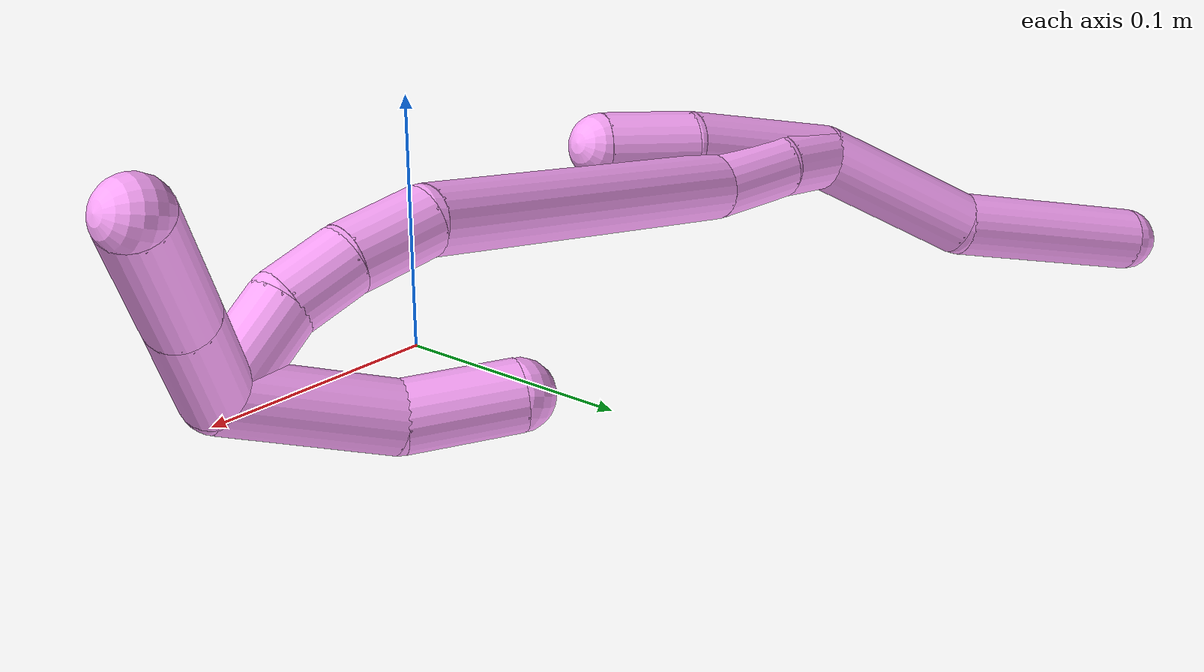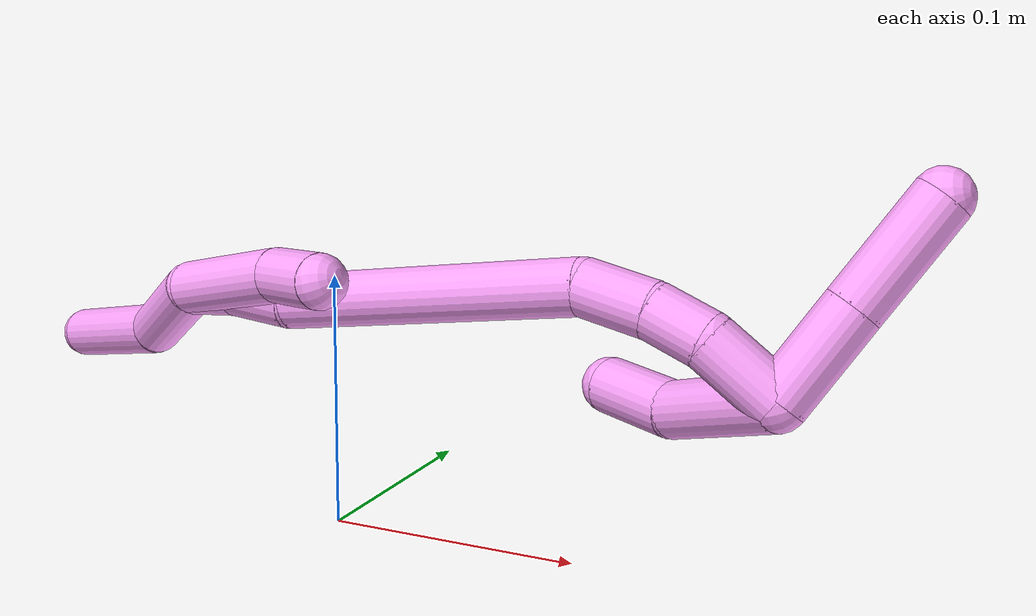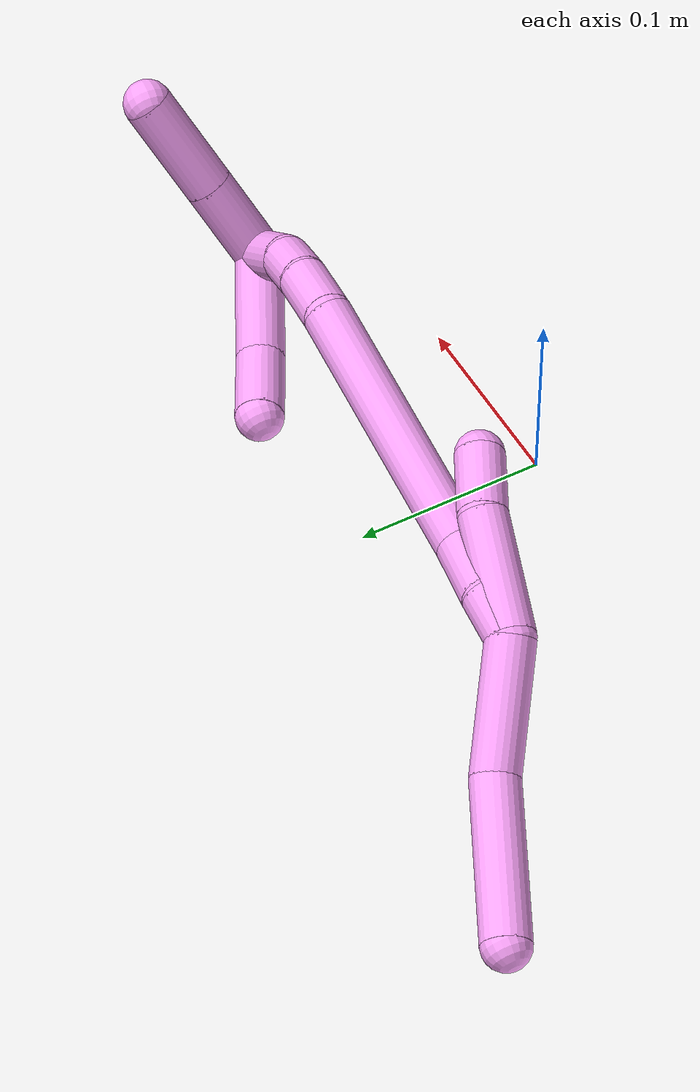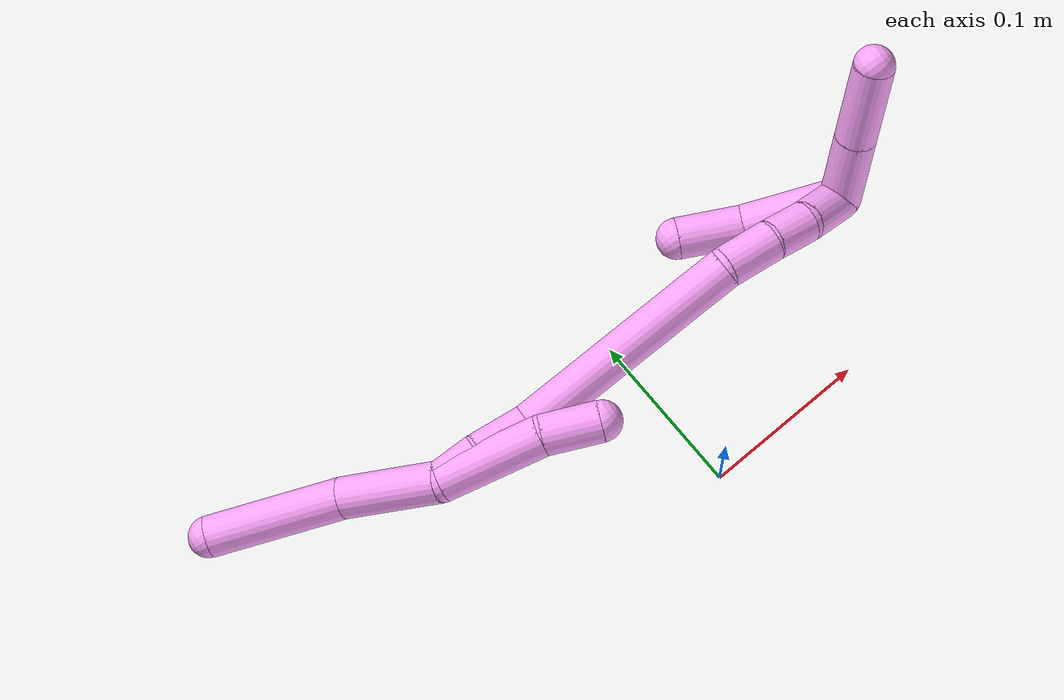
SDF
<sdf version="1.7">
 <world name="default">
  <model name="photoneo_s_sensor">
   <static>1</static>
   <pose>0 0 2 1.57079 1.57079 3.14159</pose>
   <link name="link">
    <inertial><mass>0.1</mass></inertial>
    <sensor name="sensor" type="depth">
     <update_rate>30</update_rate>
     <camera>
      <horizontal_fov>1.22</horizontal_fov>
      <image><width>1920</width><height>1200</height><format>B8G8R8</format></image>
      <clip><near>0.1</near><far>4</far></clip>
      <depth_camera><output>points</output></depth_camera>
     </camera>
     <plugin name="camera_plugin" filename="libgazebo_ros_depth_camera.so">
      <baseline>0.2</baseline>
      <alwaysOn>1</alwaysOn>
      <updateRate>0.0</updateRate>
      <cameraName>camera_ir</cameraName>
      <imageTopicName>/camera/color/image_raw</imageTopicName>
      <cameraInfoTopicName>/camera/color/camera_info</cameraInfoTopicName>
      <depthImageTopicName>/camera/depth/image_raw</depthImageTopicName>
      <depthImageCameraInfoTopicName>/camera/depth/camera_info</depthImageCameraInfoTopicName>
      <pointCloudTopicName>/camera/depth/points</pointCloudTopicName>
      <frameName>fr_optical</frameName>
      <pointCloudCutoff>0.1</pointCloudCutoff>
      <pointCloudCutoffMax>2.0</pointCloudCutoffMax>
      <distortionK1>0</distortionK1>
      <distortionK2>0</distortionK2>
      <distortionK3>0</distortionK3>
      <distortionT1>0</distortionT1>
      <distortionT2>0</distortionT2>
      <CxPrime>0</CxPrime>
      <Cx>0</Cx>
      <Cy>0</Cy>
      <focalLength>0</focalLength>
      <hackBaseline>0</hackBaseline>
     </plugin>
    </sensor>
   </link>
  </model>
  <model name="bin">
   <static>1</static>
   <link name="bottom">
    <collision name="collision-bottom">
     <pose>0 0 -0.01 0 -0 0</pose>
     <geometry><box><size>0.8 0.6 0.02</size></box></geometry>
     <surface>
      <friction><ode><mu>100</mu><mu2>100</mu2></ode></friction>
      <contact><collide_bitmask>65535</collide_bitmask></contact>
     </surface>
    </collision>
   </link>
   <link name="west_wall">
    <collision name="collision-west_wall">
     <pose>-0.41 0 0.1 0 -0 0</pose>
     <geometry><box><size>0.02 0.6 0.2</size></box></geometry>
     <surface>
      <friction><ode><mu>100</mu><mu2>100</mu2></ode></friction>
      <contact><collide_bitmask>65535</collide_bitmask></contact>
     </surface>
    </collision>
   </link>
   <link name="east_wall">
    <collision name="collision-east_wall">
     <pose>0.41 0 0.1 0 -0 0</pose>
     <geometry><box><size>0.02 0.6 0.2</size></box></geometry>
     <surface>
      <friction><ode><mu>100</mu><mu2>100</mu2></ode></friction>
      <contact><collide_bitmask>65535</collide_bitmask></contact>
     </surface>
    </collision>
   </link>
   <link name="south_wall">
    <collision name="collision-south_wall">
     <pose>0 -0.31 0.1 0 -0 0</pose>
     <geometry><box><size>0.8 0.02 0.2</size></box></geometry>
     <surface>
      <friction><ode><mu>100</mu><mu2>100</mu2></ode></friction>
      <contact><collide_bitmask>65535</collide_bitmask></contact>
     </surface>
    </collision>
   </link>
   <link name="north_wall">
    <collision name="collision-north_wall">
     <pose>0 0.31 0.1 0 -0 0</pose>
     <geometry><box><size>0.8 0.02 0.2</size></box></geometry>
     <surface>
      <friction><ode><mu>100</mu><mu2>100</mu2></ode></friction>
      <contact><collide_bitmask>65535</collide_bitmask></contact>
     </surface>
    </collision>
   </link>
  </model>
  <model name="4">
   <static>0</static>
   <link name="4">
    <collision name="collision-cylinder-e_1_2_8">
     <pose>-0.01227 0.011873 -0.028662 -2.74886 -0.376635 1.5279</pose>
     <geometry><cylinder><radius>0.0125</radius><length>0.066724</length></cylinder></geometry>
     <surface>
      <friction><ode><mu>1.16</mu><mu2>1.16</mu2><slip1>0</slip1><slip2>0</slip2></ode></friction>
      <contact><ode><kp>1e+06</kp><kd>1</kd><max_vel>0</max_vel><min_depth>0.001</min_depth></ode></contact>
     </surface>
    </collision>
    <visual name="visual-cylinder-e_1_2_8">
     <pose>-0.01227 0.011873 -0.028662 -2.74886 -0.376635 1.5279</pose>
     <geometry><cylinder><radius>0.0125</radius><length>0.066724</length></cylinder></geometry>
     <material><ambient>1 0.65098 0.996078 1</ambient></material>
    </visual>
    <collision name="collision-cylinder-e_2_8_6">
     <pose>-0.038467 0.025149 -0.096538 -3.10583 -0.34104 2.93464</pose>
     <geometry><cylinder><radius>0.0125</radius><length>0.083276</length></cylinder></geometry>
     <surface>
      <friction><ode><mu>1.16</mu><mu2>1.16</mu2><slip1>0</slip1><slip2>0</slip2></ode></friction>
      <contact><ode><kp>1e+06</kp><kd>1</kd><max_vel>0</max_vel><min_depth>0.001</min_depth></ode></contact>
     </surface>
    </collision>
    <visual name="visual-cylinder-e_2_8_6">
     <pose>-0.038467 0.025149 -0.096538 -3.10583 -0.34104 2.93464</pose>
     <geometry><cylinder><radius>0.0125</radius><length>0.083276</length></cylinder></geometry>
     <material><ambient>1 0.65098 0.996078 1</ambient></material>
    </visual>
    <collision name="collision-cylinder-e_1_2_9">
     <pose>0.006347 -0.000342 0.031759 0.010776 0.197227 0.001066</pose>
     <geometry><cylinder><radius>0.0125</radius><length>0.064777</length></cylinder></geometry>
     <surface>
      <friction><ode><mu>1.16</mu><mu2>1.16</mu2><slip1>0</slip1><slip2>0</slip2></ode></friction>
      <contact><ode><kp>1e+06</kp><kd>1</kd><max_vel>0</max_vel><min_depth>0.001</min_depth></ode></contact>
     </surface>
    </collision>
    <visual name="visual-cylinder-e_1_2_9">
     <pose>0.006347 -0.000342 0.031759 0.010776 0.197227 0.001066</pose>
     <geometry><cylinder><radius>0.0125</radius><length>0.064777</length></cylinder></geometry>
     <material><ambient>1 0.65098 0.996078 1</ambient></material>
    </visual>
    <collision name="collision-cylinder-e_2_9_5">
     <pose>0.01958 0.000688 0.079668 -0.084754 0.401766 -0.017268</pose>
     <geometry><cylinder><radius>0.0125</radius><length>0.035223</length></cylinder></geometry>
     <surface>
      <friction><ode><mu>1.16</mu><mu2>1.16</mu2><slip1>0</slip1><slip2>0</slip2></ode></friction>
      <contact><ode><kp>1e+06</kp><kd>1</kd><max_vel>0</max_vel><min_depth>0.001</min_depth></ode></contact>
     </surface>
    </collision>
    <visual name="visual-cylinder-e_2_9_5">
     <pose>0.01958 0.000688 0.079668 -0.084754 0.401766 -0.017268</pose>
     <geometry><cylinder><radius>0.0125</radius><length>0.035223</length></cylinder></geometry>
     <material><ambient>1 0.65098 0.996078 1</ambient></material>
    </visual>
    <collision name="collision-cylinder-e_1_2_10">
     <pose>0.000109 0.002516 0.013048 -0.190461 0.008175 -0.000781</pose>
     <geometry><cylinder><radius>0.0125</radius><length>0.026578</length></cylinder></geometry>
     <surface>
      <friction><ode><mu>1.16</mu><mu2>1.16</mu2><slip1>0</slip1><slip2>0</slip2></ode></friction>
      <contact><ode><kp>1e+06</kp><kd>1</kd><max_vel>0</max_vel><min_depth>0.001</min_depth></ode></contact>
     </surface>
    </collision>
    <visual name="visual-cylinder-e_1_2_10">
     <pose>0.000109 0.002516 0.013048 -0.190461 0.008175 -0.000781</pose>
     <geometry><cylinder><radius>0.0125</radius><length>0.026578</length></cylinder></geometry>
     <material><ambient>1 0.65098 0.996078 1</ambient></material>
    </visual>
    <collision name="collision-cylinder-e_2_10_11">
     <pose>0.002276 0.010036 0.042054 -0.303932 0.122509 -0.018785</pose>
     <geometry><cylinder><radius>0.0125</radius><length>0.033701</length></cylinder></geometry>
     <surface>
      <friction><ode><mu>1.16</mu><mu2>1.16</mu2><slip1>0</slip1><slip2>0</slip2></ode></friction>
      <contact><ode><kp>1e+06</kp><kd>1</kd><max_vel>0</max_vel><min_depth>0.001</min_depth></ode></contact>
     </surface>
    </collision>
    <visual name="visual-cylinder-e_2_10_11">
     <pose>0.002276 0.010036 0.042054 -0.303932 0.122509 -0.018785</pose>
     <geometry><cylinder><radius>0.0125</radius><length>0.033701</length></cylinder></geometry>
     <material><ambient>1 0.65098 0.996078 1</ambient></material>
    </visual>
    <collision name="collision-cylinder-e_3_11_12">
     <pose>0.002024 0.025049 0.129906 -0.138313 -0.031833 0.002205</pose>
     <geometry><cylinder><radius>0.0125</radius><length>0.145249</length></cylinder></geometry>
     <surface>
      <friction><ode><mu>1.16</mu><mu2>1.16</mu2><slip1>0</slip1><slip2>0</slip2></ode></friction>
      <contact><ode><kp>1e+06</kp><kd>1</kd><max_vel>0</max_vel><min_depth>0.001</min_depth></ode></contact>
     </surface>
    </collision>
    <visual name="visual-cylinder-e_3_11_12">
     <pose>0.002024 0.025049 0.129906 -0.138313 -0.031833 0.002205</pose>
     <geometry><cylinder><radius>0.0125</radius><length>0.145249</length></cylinder></geometry>
     <material><ambient>1 0.65098 0.996078 1</ambient></material>
    </visual>
    <collision name="collision-cylinder-e_4_12_13">
     <pose>0.00164 0.042114 0.216444 -0.449099 0.118018 -0.026985</pose>
     <geometry><cylinder><radius>0.0125</radius><length>0.032738</length></cylinder></geometry>
     <surface>
      <friction><ode><mu>1.16</mu><mu2>1.16</mu2><slip1>0</slip1><slip2>0</slip2></ode></friction>
      <contact><ode><kp>1e+06</kp><kd>1</kd><max_vel>0</max_vel><min_depth>0.001</min_depth></ode></contact>
     </surface>
    </collision>
    <visual name="visual-cylinder-e_4_12_13">
     <pose>0.00164 0.042114 0.216444 -0.449099 0.118018 -0.026985</pose>
     <geometry><cylinder><radius>0.0125</radius><length>0.032738</length></cylinder></geometry>
     <material><ambient>1 0.65098 0.996078 1</ambient></material>
    </visual>
    <collision name="collision-cylinder-e_5_13_14">
     <pose>0.005642 0.056581 0.241483 -0.619199 0.161136 -0.051645</pose>
     <geometry><cylinder><radius>0.0125</radius><length>0.025868</length></cylinder></geometry>
     <surface>
      <friction><ode><mu>1.16</mu><mu2>1.16</mu2><slip1>0</slip1><slip2>0</slip2></ode></friction>
      <contact><ode><kp>1e+06</kp><kd>1</kd><max_vel>0</max_vel><min_depth>0.001</min_depth></ode></contact>
     </surface>
    </collision>
    <visual name="visual-cylinder-e_5_13_14">
     <pose>0.005642 0.056581 0.241483 -0.619199 0.161136 -0.051645</pose>
     <geometry><cylinder><radius>0.0125</radius><length>0.025868</length></cylinder></geometry>
     <material><ambient>1 0.65098 0.996078 1</ambient></material>
    </visual>
    <collision name="collision-cylinder-e_6_14_1">
     <pose>0.009184 0.07835 0.262521 -0.933053 0.081888 -0.041256</pose>
     <geometry><cylinder><radius>0.0125</radius><length>0.035866</length></cylinder></geometry>
     <surface>
      <friction><ode><mu>1.16</mu><mu2>1.16</mu2><slip1>0</slip1><slip2>0</slip2></ode></friction>
      <contact><ode><kp>1e+06</kp><kd>1</kd><max_vel>0</max_vel><min_depth>0.001</min_depth></ode></contact>
     </surface>
    </collision>
    <visual name="visual-cylinder-e_6_14_1">
     <pose>0.009184 0.07835 0.262521 -0.933053 0.081888 -0.041256</pose>
     <geometry><cylinder><radius>0.0125</radius><length>0.035866</length></cylinder></geometry>
     <material><ambient>1 0.65098 0.996078 1</ambient></material>
    </visual>
    <collision name="collision-cylinder-e_1_1_15">
     <pose>-0.001727 0.080684 0.288503 0.664873 -0.565777 -0.200047</pose>
     <geometry><cylinder><radius>0.0125</radius><length>0.046182</length></cylinder></geometry>
     <surface>
      <friction><ode><mu>1.16</mu><mu2>1.16</mu2><slip1>0</slip1><slip2>0</slip2></ode></friction>
      <contact><ode><kp>1e+06</kp><kd>1</kd><max_vel>0</max_vel><min_depth>0.001</min_depth></ode></contact>
     </surface>
    </collision>
    <visual name="visual-cylinder-e_1_1_15">
     <pose>-0.001727 0.080684 0.288503 0.664873 -0.565777 -0.200047</pose>
     <geometry><cylinder><radius>0.0125</radius><length>0.046182</length></cylinder></geometry>
     <material><ambient>1 0.65098 0.996078 1</ambient></material>
    </visual>
    <collision name="collision-cylinder-e_2_15_4">
     <pose>-0.028528 0.054749 0.321806 0.658898 -0.565647 -0.198077</pose>
     <geometry><cylinder><radius>0.0125</radius><length>0.053818</length></cylinder></geometry>
     <surface>
      <friction><ode><mu>1.16</mu><mu2>1.16</mu2><slip1>0</slip1><slip2>0</slip2></ode></friction>
      <contact><ode><kp>1e+06</kp><kd>1</kd><max_vel>0</max_vel><min_depth>0.001</min_depth></ode></contact>
     </surface>
    </collision>
    <visual name="visual-cylinder-e_2_15_4">
     <pose>-0.028528 0.054749 0.321806 0.658898 -0.565647 -0.198077</pose>
     <geometry><cylinder><radius>0.0125</radius><length>0.053818</length></cylinder></geometry>
     <material><ambient>1 0.65098 0.996078 1</ambient></material>
    </visual>
    <collision name="collision-cylinder-e_1_1_16">
     <pose>0.00068 0.095895 0.245179 -3.02829 -0.340271 2.50389</pose>
     <geometry><cylinder><radius>0.0125</radius><length>0.059754</length></cylinder></geometry>
     <surface>
      <friction><ode><mu>1.16</mu><mu2>1.16</mu2><slip1>0</slip1><slip2>0</slip2></ode></friction>
      <contact><ode><kp>1e+06</kp><kd>1</kd><max_vel>0</max_vel><min_depth>0.001</min_depth></ode></contact>
     </surface>
    </collision>
    <visual name="visual-cylinder-e_1_1_16">
     <pose>0.00068 0.095895 0.245179 -3.02829 -0.340271 2.50389</pose>
     <geometry><cylinder><radius>0.0125</radius><length>0.059754</length></cylinder></geometry>
     <material><ambient>1 0.65098 0.996078 1</ambient></material>
    </visual>
    <collision name="collision-cylinder-e_2_16_3">
     <pose>-0.018142 0.095202 0.199544 2.9254 -0.45543 -2.26566</pose>
     <geometry><cylinder><radius>0.0125</radius><length>0.040246</length></cylinder></geometry>
     <surface>
      <friction><ode><mu>1.16</mu><mu2>1.16</mu2><slip1>0</slip1><slip2>0</slip2></ode></friction>
      <contact><ode><kp>1e+06</kp><kd>1</kd><max_vel>0</max_vel><min_depth>0.001</min_depth></ode></contact>
     </surface>
    </collision>
    <visual name="visual-cylinder-e_2_16_3">
     <pose>-0.018142 0.095202 0.199544 2.9254 -0.45543 -2.26566</pose>
     <geometry><cylinder><radius>0.0125</radius><length>0.040246</length></cylinder></geometry>
     <material><ambient>1 0.65098 0.996078 1</ambient></material>
    </visual>
    <collision name="collision-sphere-3">
     <pose>-0.026993 0.091326 0.181893 0 -0 0</pose>
     <geometry><sphere><radius>0.0125</radius></sphere></geometry>
     <surface>
      <friction><ode><mu>1.16</mu><mu2>1.16</mu2><slip1>0</slip1><slip2>0</slip2></ode></friction>
      <contact><ode><kp>1e+06</kp><kd>1</kd><max_vel>0</max_vel><min_depth>0.001</min_depth></ode></contact>
     </surface>
    </collision>
    <visual name="visual-sphere-3">
     <pose>-0.026993 0.091326 0.181893 0 -0 0</pose>
     <geometry><sphere><radius>0.0125</radius></sphere></geometry>
     <material><ambient>1 0.65098 0.996078 1</ambient></material>
    </visual>
    <collision name="collision-sphere-16">
     <pose>-0.009291 0.099079 0.217195 0 -0 0</pose>
     <geometry><sphere><radius>0.0125</radius></sphere></geometry>
     <surface>
      <friction><ode><mu>1.16</mu><mu2>1.16</mu2><slip1>0</slip1><slip2>0</slip2></ode></friction>
      <contact><ode><kp>1e+06</kp><kd>1</kd><max_vel>0</max_vel><min_depth>0.001</min_depth></ode></contact>
     </surface>
    </collision>
    <visual name="visual-sphere-16">
     <pose>-0.009291 0.099079 0.217195 0 -0 0</pose>
     <geometry><sphere><radius>0.0125</radius></sphere></geometry>
     <material><ambient>1 0.65098 0.996078 1</ambient></material>
    </visual>
    <collision name="collision-sphere-4">
     <pose>-0.04295 0.04084 0.339768 0 -0 0</pose>
     <geometry><sphere><radius>0.0125</radius></sphere></geometry>
     <surface>
      <friction><ode><mu>1.16</mu><mu2>1.16</mu2><slip1>0</slip1><slip2>0</slip2></ode></friction>
      <contact><ode><kp>1e+06</kp><kd>1</kd><max_vel>0</max_vel><min_depth>0.001</min_depth></ode></contact>
     </surface>
    </collision>
    <visual name="visual-sphere-4">
     <pose>-0.04295 0.04084 0.339768 0 -0 0</pose>
     <geometry><sphere><radius>0.0125</radius></sphere></geometry>
     <material><ambient>1 0.65098 0.996078 1</ambient></material>
    </visual>
    <collision name="collision-sphere-15">
     <pose>-0.014105 0.068658 0.303844 0 -0 0</pose>
     <geometry><sphere><radius>0.0125</radius></sphere></geometry>
     <surface>
      <friction><ode><mu>1.16</mu><mu2>1.16</mu2><slip1>0</slip1><slip2>0</slip2></ode></friction>
      <contact><ode><kp>1e+06</kp><kd>1</kd><max_vel>0</max_vel><min_depth>0.001</min_depth></ode></contact>
     </surface>
    </collision>
    <visual name="visual-sphere-15">
     <pose>-0.014105 0.068658 0.303844 0 -0 0</pose>
     <geometry><sphere><radius>0.0125</radius></sphere></geometry>
     <material><ambient>1 0.65098 0.996078 1</ambient></material>
    </visual>
    <collision name="collision-sphere-1">
     <pose>0.010651 0.09271 0.273162 0 -0 0</pose>
     <geometry><sphere><radius>0.0125</radius></sphere></geometry>
     <surface>
      <friction><ode><mu>1.16</mu><mu2>1.16</mu2><slip1>0</slip1><slip2>0</slip2></ode></friction>
      <contact><ode><kp>1e+06</kp><kd>1</kd><max_vel>0</max_vel><min_depth>0.001</min_depth></ode></contact>
     </surface>
    </collision>
    <visual name="visual-sphere-1">
     <pose>0.010651 0.09271 0.273162 0 -0 0</pose>
     <geometry><sphere><radius>0.0125</radius></sphere></geometry>
     <material><ambient>1 0.65098 0.996078 1</ambient></material>
    </visual>
    <collision name="collision-sphere-14">
     <pose>0.007718 0.06399 0.251879 0 -0 0</pose>
     <geometry><sphere><radius>0.0125</radius></sphere></geometry>
     <surface>
      <friction><ode><mu>1.16</mu><mu2>1.16</mu2><slip1>0</slip1><slip2>0</slip2></ode></friction>
      <contact><ode><kp>1e+06</kp><kd>1</kd><max_vel>0</max_vel><min_depth>0.001</min_depth></ode></contact>
     </surface>
    </collision>
    <visual name="visual-sphere-14">
     <pose>0.007718 0.06399 0.251879 0 -0 0</pose>
     <geometry><sphere><radius>0.0125</radius></sphere></geometry>
     <material><ambient>1 0.65098 0.996078 1</ambient></material>
    </visual>
    <collision name="collision-sphere-13">
     <pose>0.003567 0.049172 0.231087 0 -0 0</pose>
     <geometry><sphere><radius>0.0125</radius></sphere></geometry>
     <surface>
      <friction><ode><mu>1.16</mu><mu2>1.16</mu2><slip1>0</slip1><slip2>0</slip2></ode></friction>
      <contact><ode><kp>1e+06</kp><kd>1</kd><max_vel>0</max_vel><min_depth>0.001</min_depth></ode></contact>
     </surface>
    </collision>
    <visual name="visual-sphere-13">
     <pose>0.003567 0.049172 0.231087 0 -0 0</pose>
     <geometry><sphere><radius>0.0125</radius></sphere></geometry>
     <material><ambient>1 0.65098 0.996078 1</ambient></material>
    </visual>
    <collision name="collision-sphere-12">
     <pose>-0.000287 0.035057 0.201801 0 -0 0</pose>
     <geometry><sphere><radius>0.0125</radius></sphere></geometry>
     <surface>
      <friction><ode><mu>1.16</mu><mu2>1.16</mu2><slip1>0</slip1><slip2>0</slip2></ode></friction>
      <contact><ode><kp>1e+06</kp><kd>1</kd><max_vel>0</max_vel><min_depth>0.001</min_depth></ode></contact>
     </surface>
    </collision>
    <visual name="visual-sphere-12">
     <pose>-0.000287 0.035057 0.201801 0 -0 0</pose>
     <geometry><sphere><radius>0.0125</radius></sphere></geometry>
     <material><ambient>1 0.65098 0.996078 1</ambient></material>
    </visual>
    <collision name="collision-sphere-11">
     <pose>0.004336 0.015042 0.058011 0 -0 0</pose>
     <geometry><sphere><radius>0.0125</radius></sphere></geometry>
     <surface>
      <friction><ode><mu>1.16</mu><mu2>1.16</mu2><slip1>0</slip1><slip2>0</slip2></ode></friction>
      <contact><ode><kp>1e+06</kp><kd>1</kd><max_vel>0</max_vel><min_depth>0.001</min_depth></ode></contact>
     </surface>
    </collision>
    <visual name="visual-sphere-11">
     <pose>0.004336 0.015042 0.058011 0 -0 0</pose>
     <geometry><sphere><radius>0.0125</radius></sphere></geometry>
     <material><ambient>1 0.65098 0.996078 1</ambient></material>
    </visual>
    <collision name="collision-sphere-8">
     <pose>-0.024541 0.023746 -0.057323 0 -0 0</pose>
     <geometry><sphere><radius>0.0125</radius></sphere></geometry>
     <surface>
      <friction><ode><mu>1.16</mu><mu2>1.16</mu2><slip1>0</slip1><slip2>0</slip2></ode></friction>
      <contact><ode><kp>1e+06</kp><kd>1</kd><max_vel>0</max_vel><min_depth>0.001</min_depth></ode></contact>
     </surface>
    </collision>
    <visual name="visual-sphere-8">
     <pose>-0.024541 0.023746 -0.057323 0 -0 0</pose>
     <geometry><sphere><radius>0.0125</radius></sphere></geometry>
     <material><ambient>1 0.65098 0.996078 1</ambient></material>
    </visual>
    <collision name="collision-sphere-2">
     <geometry><sphere><radius>0.0125</radius></sphere></geometry>
     <surface>
      <friction><ode><mu>1.16</mu><mu2>1.16</mu2><slip1>0</slip1><slip2>0</slip2></ode></friction>
      <contact><ode><kp>1e+06</kp><kd>1</kd><max_vel>0</max_vel><min_depth>0.001</min_depth></ode></contact>
     </surface>
    </collision>
    <visual name="visual-sphere-2">
     <geometry><sphere><radius>0.0125</radius></sphere></geometry>
     <material><ambient>1 0.65098 0.996078 1</ambient></material>
    </visual>
    <collision name="collision-sphere-9">
     <pose>0.012693 -0.000685 0.063517 0 -0 0</pose>
     <geometry><sphere><radius>0.0125</radius></sphere></geometry>
     <surface>
      <friction><ode><mu>1.16</mu><mu2>1.16</mu2><slip1>0</slip1><slip2>0</slip2></ode></friction>
      <contact><ode><kp>1e+06</kp><kd>1</kd><max_vel>0</max_vel><min_depth>0.001</min_depth></ode></contact>
     </surface>
    </collision>
    <visual name="visual-sphere-9">
     <pose>0.012693 -0.000685 0.063517 0 -0 0</pose>
     <geometry><sphere><radius>0.0125</radius></sphere></geometry>
     <material><ambient>1 0.65098 0.996078 1</ambient></material>
    </visual>
    <collision name="collision-sphere-6">
     <pose>-0.052394 0.026552 -0.135753 0 -0 0</pose>
     <geometry><sphere><radius>0.0125</radius></sphere></geometry>
     <surface>
      <friction><ode><mu>1.16</mu><mu2>1.16</mu2><slip1>0</slip1><slip2>0</slip2></ode></friction>
      <contact><ode><kp>1e+06</kp><kd>1</kd><max_vel>0</max_vel><min_depth>0.001</min_depth></ode></contact>
     </surface>
    </collision>
    <visual name="visual-sphere-6">
     <pose>-0.052394 0.026552 -0.135753 0 -0 0</pose>
     <geometry><sphere><radius>0.0125</radius></sphere></geometry>
     <material><ambient>1 0.65098 0.996078 1</ambient></material>
    </visual>
    <collision name="collision-sphere-5">
     <pose>0.026467 0.00206 0.095819 0 -0 0</pose>
     <geometry><sphere><radius>0.0125</radius></sphere></geometry>
     <surface>
      <friction><ode><mu>1.16</mu><mu2>1.16</mu2><slip1>0</slip1><slip2>0</slip2></ode></friction>
      <contact><ode><kp>1e+06</kp><kd>1</kd><max_vel>0</max_vel><min_depth>0.001</min_depth></ode></contact>
     </surface>
    </collision>
    <visual name="visual-sphere-5">
     <pose>0.026467 0.00206 0.095819 0 -0 0</pose>
     <geometry><sphere><radius>0.0125</radius></sphere></geometry>
     <material><ambient>1 0.65098 0.996078 1</ambient></material>
    </visual>
    <collision name="collision-sphere-10">
     <pose>0.000217 0.005031 0.026096 0 -0 0</pose>
     <geometry><sphere><radius>0.0125</radius></sphere></geometry>
     <surface>
      <friction><ode><mu>1.16</mu><mu2>1.16</mu2><slip1>0</slip1><slip2>0</slip2></ode></friction>
      <contact><ode><kp>1e+06</kp><kd>1</kd><max_vel>0</max_vel><min_depth>0.001</min_depth></ode></contact>
     </surface>
    </collision>
    <visual name="visual-sphere-10">
     <pose>0.000217 0.005031 0.026096 0 -0 0</pose>
     <geometry><sphere><radius>0.0125</radius></sphere></geometry>
     <material><ambient>1 0.65098 0.996078 1</ambient></material>
    </visual>
    <inertial>
     <pose>-0.005764 0.038425 0.122155 0 -0 0</pose>
     <mass>0.75</mass>
     <inertia>
      <ixx>0.000294</ixx>
      <ixy>0</ixy>
      <ixz>0</ixz>
      <iyy>0.000443</iyy>
      <iyz>0</iyz>
      <izz>2.2e-05</izz>
     </inertia>
    </inertial>
   </link>
   <pose>-0.133108 0.094731 0.062701 -1.27975 0.224996 -1.61145</pose>
  </model>
 </world>
</sdf>
